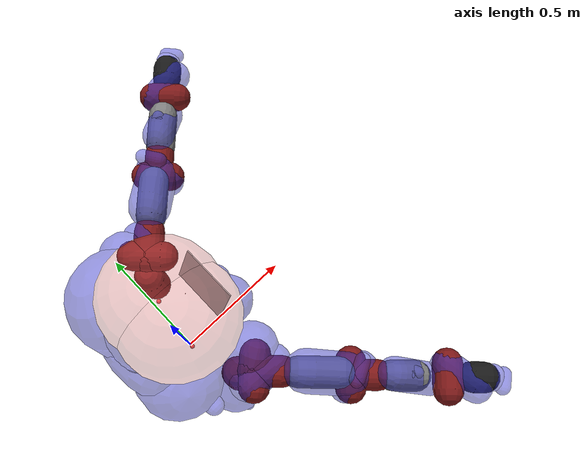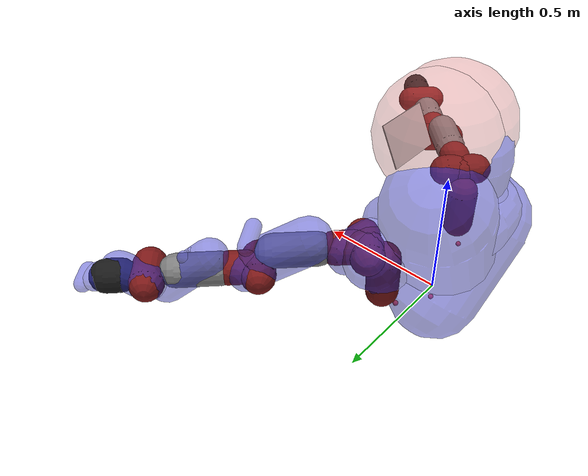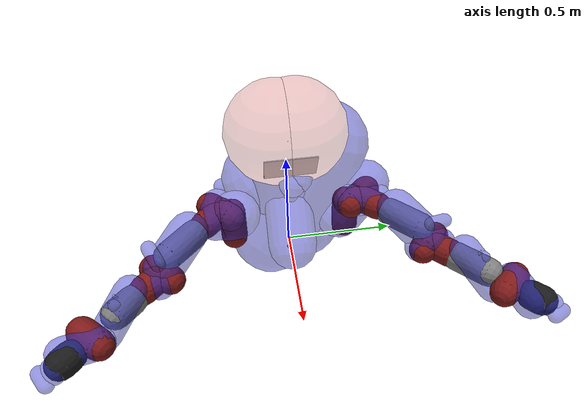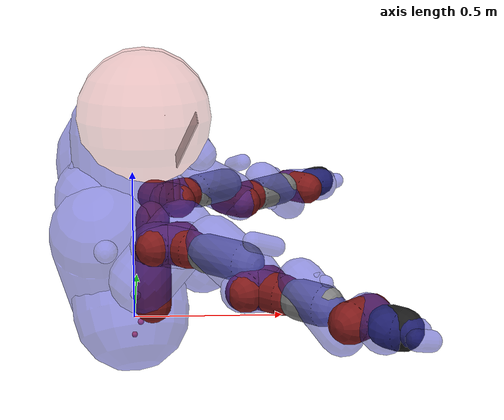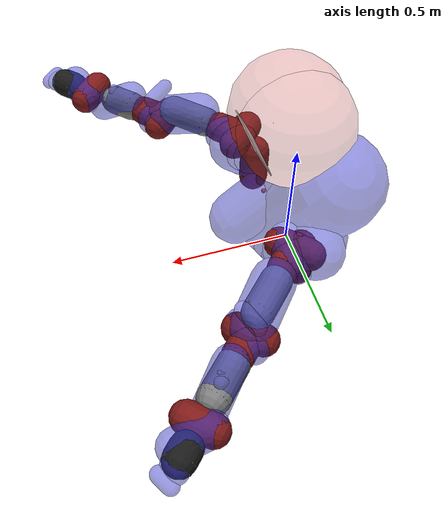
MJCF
<mujoco model="baxter">
  <compiler angle="radian"/>
  <asset>
    <material name="Material_001.001" specular="0.5" shininess="0.225" rgba="0.121856 0.121856 0.121856 1.000000"/>
    <mesh name="H0" file="obj_meshes/head/H0/H0.obj"/>
    <material name="Material.003" specular="0.5" shininess="0.225" rgba="0.640000 0.000000 0.000000 1.000000"/>
    <material name="Material_001.003" specular="0.5" shininess="0.225" rgba="0.000000 0.000000 0.000000 1.000000"/>
    <mesh name="H1_0" file="obj_meshes/head/H1/H1_0.obj"/>
    <mesh name="H1_1" file="obj_meshes/head/H1/H1_1.obj"/>
    <material name="Material_001.004" specular="0.5" shininess="0.225" rgba="0.512000 0.000000 0.000000 1.000000"/>
    <material name="Material_002" specular="0.5" shininess="0.225" rgba="0.016303 0.016303 0.016303 1.000000"/>
    <mesh name="E1_0" file="obj_meshes/lower_elbow/E1/E1_0.obj"/>
    <mesh name="E1_1" file="obj_meshes/lower_elbow/E1/E1_1.obj"/>
    <material name="Material_001.005" specular="0.5" shininess="0.225" rgba="0.097485 0.097485 0.097485 1.000000"/>
    <material name="Material_002.005" specular="0.5" shininess="0.225" rgba="0.016303 0.016303 0.016303 1.000000"/>
    <mesh name="W1_0" file="obj_meshes/lower_forearm/W1/W1_0.obj"/>
    <mesh name="W1_1" file="obj_meshes/lower_forearm/W1/W1_1.obj"/>
    <material name="Material_001.006" specular="0.5" shininess="0.225" rgba="0.640000 0.000000 0.000000 1.000000"/>
    <mesh name="S1" file="obj_meshes/lower_shoulder/S1/S1.obj"/>
    <material name="Material_001.010" specular="0.5" shininess="0.225" rgba="0.512000 0.000000 0.000000 1.000000"/>
    <material name="Material_003" specular="0.5" shininess="0.225" rgba="0.016303 0.016303 0.016303 1.000000"/>
    <material name="Material_004" specular="0.5" shininess="0.225" rgba="0.066807 0.066822 0.066822 1.000000"/>
    <material name="Material_005" specular="0.5" shininess="0.225" rgba="0.640000 0.640000 0.640000 1.000000"/>
    <material name="Material_006" specular="0.5" shininess="0.225" rgba="0.351258 0.351258 0.351258 1.000000"/>
    <material name="Material_007" specular="0.5" shininess="0.225" rgba="0.016303 0.016303 0.016303 1.000000"/>
    <mesh name="base_link_0" file="obj_meshes/torso/base_link/base_link_0.obj"/>
    <mesh name="base_link_1" file="obj_meshes/torso/base_link/base_link_1.obj"/>
    <mesh name="base_link_2" file="obj_meshes/torso/base_link/base_link_2.obj"/>
    <mesh name="base_link_3" file="obj_meshes/torso/base_link/base_link_3.obj"/>
    <mesh name="base_link_4" file="obj_meshes/torso/base_link/base_link_4.obj"/>
    <mesh name="base_link_5" file="obj_meshes/torso/base_link/base_link_5.obj"/>
    <material name="Material_001.008" specular="0.5" shininess="0.225" rgba="0.512000 0.013653 0.013653 1.000000"/>
    <material name="Material_002.002" specular="0.5" shininess="0.225" rgba="0.016303 0.016303 0.016303 1.000000"/>
    <mesh name="E0_0" file="obj_meshes/upper_elbow/E0/E0_0.obj"/>
    <mesh name="E0_1" file="obj_meshes/upper_elbow/E0/E0_1.obj"/>
    <material name="Material_001.009" specular="0.5" shininess="0.225" rgba="0.512000 0.000000 0.000000 1.000000"/>
    <material name="Material_002.003" specular="0.5" shininess="0.225" rgba="0.097485 0.097485 0.097485 1.000000"/>
    <material name="Material_003.001" specular="0.5" shininess="0.225" rgba="0.016303 0.016303 0.016303 1.000000"/>
    <material name="Material_005.001" specular="0.5" shininess="0.225" rgba="0.512000 0.512000 0.512000 1.000000"/>
    <mesh name="W0_0" file="obj_meshes/upper_forearm/W0/W0_0.obj"/>
    <mesh name="W0_1" file="obj_meshes/upper_forearm/W0/W0_1.obj"/>
    <mesh name="W0_2" file="obj_meshes/upper_forearm/W0/W0_2.obj"/>
    <mesh name="W0_3" file="obj_meshes/upper_forearm/W0/W0_3.obj"/>
    <material name="Material_002.004" specular="0.5" shininess="0.225" rgba="0.097485 0.097485 0.097485 1.000000"/>
    <material name="Material_003.002" specular="0.5" shininess="0.225" rgba="0.016303 0.016303 0.016303 1.000000"/>
    <mesh name="S0_0" file="obj_meshes/upper_shoulder/S0/S0_0.obj"/>
    <mesh name="S0_1" file="obj_meshes/upper_shoulder/S0/S0_1.obj"/>
    <material name="Material_001.011" specular="0.5" shininess="0.225" rgba="0.016303 0.016303 0.016303 1.000000"/>
    <material name="Material_002.006" specular="0.5" shininess="0.225" rgba="0.512000 0.512000 0.512000 1.000000"/>
    <material name="Material_003.004" specular="0.5" shininess="0.225" rgba="0.170722 0.170722 0.170722 1.000000"/>
    <mesh name="W2_0" file="obj_meshes/wrist/W2/W2_0.obj"/>
    <mesh name="W2_1" file="obj_meshes/wrist/W2/W2_1.obj"/>
    <mesh name="W2_2" file="obj_meshes/wrist/W2/W2_2.obj"/>
    <mesh name="base_link_collision" file="obj_meshes/torso/base_link_collision.stl"/>
  </asset>
  <default>
    <default class="viz">
      <geom contype="0" conaffinity="0" group="1" type="mesh"/>
    </default>
    <default class="right_col">
      <geom contype="4" conaffinity="3" group="0"/>
    </default>
    <default class="left_col">
      <geom contype="2" conaffinity="5" group="0"/>
    </default>
    <default class="visual">
      <geom contype="0" conaffinity="0" group="1" type="mesh"/>
    </default>
  </default>
  <contact>
    <exclude body1="right_upper_shoulder" body2="torso"/>
    <exclude body1="right_upper_shoulder" body2="right_upper_elbow"/>
    <exclude body1="right_lower_shoulder" body2="torso"/>
    <exclude body1="left_upper_shoulder" body2="torso"/>
    <exclude body1="left_upper_shoulder" body2="left_upper_elbow"/>
    <exclude body1="left_lower_shoulder" body2="torso"/>
    <exclude body1="collision_head_link_1" body2="torso"/>
    <exclude body1="collision_head_link_2" body2="torso"/>
  </contact>
  <worldbody>
    <body name="base" pos="0 0 -0.062">
      <camera mode="fixed" name="robotview" pos="1.3 0 0.4" quat="0.653 0.271 0.271 0.653"/>
      <inertial pos="0 0 0" mass="10" diaginertia="0.001 0.001 0.001"/>
      <body name="fixed_base_link" pos="0 0 0">
        <body name="collision_head_link_1" pos="0.11 0 0.75">
          <inertial pos="0 0 0" mass="0.0001" diaginertia="1e-008 1e-008 1e-008"/>
          <geom name="collision_head_link_1_vis" margin="0.001" type="sphere" class="viz" size="0.001" rgba="0.8 0.3 0.3 1" pos="0 0 0"/>
          <geom name="collision_head_link_1_col" margin="0.001" type="sphere" size="0.22" rgba="0.8 0.3 0.3 0.3" pos="-0.07 -0.04 0"/>
        </body>
        <body name="collision_head_link_2" pos="0.11 0 0.75">
          <inertial pos="0 0 0" mass="0.0001" diaginertia="1e-008 1e-008 1e-008"/>
          <geom name="collision_head_link_2_col0" margin="0.001" type="sphere" size="0.001" rgba="0.8 0.3 0.3 0.3" pos="0 0 0"/>
          <geom name="collision_head_link_2_col1" margin="0.001" type="sphere" size="0.22" rgba="0.8 0.3 0.3 0.3" pos="-0.07 0.04 0"/>
        </body>
        <body name="torso" pos="0 0 0">
          <site name="center" pos="0 0 0" size="0.01" rgba="1 0.3 0.3 1" group="2"/>
          <inertial pos="0 0 0" quat="0.997433 0.00167178 0.0715546 -0.00209003" mass="35.3365" diaginertia="1.87139 1.66268 0.779991"/>
          <geom material="Material_005" class="visual" type="capsule" pos="-0.081433 -0.072697 0.370204" quat="0.703378 -0.710809 -0.003268 0.000000" size="0.037167 0.221585" rgba="0.2 0.2 0.8 0.5"/>
          <geom material="Material_007" class="visual" type="capsule" pos="-0.073734 -0.018619 0.252505" quat="0.941846 0.327920 -0.073451 0.000000" size="0.173754 0.166093" rgba="0.2 0.2 0.8 0.5"/>
          <geom material="Material_003" class="visual" type="capsule" pos="-0.122693 0.003881 0.476637" quat="0.683989 -0.727697 -0.051143 0.000000" size="0.134827 0.042538" rgba="0.2 0.2 0.8 0.5"/>
          <geom material="Material_001.010" class="visual" type="capsule" pos="0.059557 -0.004590 0.399006" quat="0.906060 -0.005941 -0.423109 0.000000" size="0.107036 0.221642" rgba="0.2 0.2 0.8 0.5"/>
          <geom material="Material_004" class="visual" type="capsule" pos="-0.022650 0.002690 0.401554" quat="0.022547 0.304639 0.952201 0.000000" size="0.167006 0.304473" rgba="0.2 0.2 0.8 0.5"/>
          <geom material="Material_006" class="visual" type="capsule" pos="0.124245 0.001605 0.329986" quat="0.002038 0.945159 -0.326604 0.000000" size="0.033007 0.192243" rgba="0.2 0.2 0.8 0.5"/>
          <geom name="base_link_col" margin="0.001" type="capsule" pos="-0.039338 0.053706 0.339379" quat="0.260848 0.939671 0.221308 0.000000" size="0.192445 0.274065" rgba="0.2 0.2 0.8 0.5"/>
          <body name="head" pos="0.06 0 0.686">
            <inertial pos="0 0 0" quat="0.339345 0.850736 -0.347392 0.201027" mass="0.547767" diaginertia="0.00474065 0.00461087 0.00199949"/>
            <geom material="Material_001.001" class="visual" type="capsule" pos="0.002227 0.004292 -0.025866" quat="0.675501 0.473419 -0.565307 0.000000" size="0.050797 0.023587" rgba="0.2 0.2 0.8 0.5"/>
            <body name="screen" pos="0.1227 0 0" quat="0.453099 0.542864 0.542864 0.453099">
              <inertial pos="0 0 0" quat="0.995785 0.0113501 -0.000390852 0.0910132" mass="0.440171" diaginertia="0.0040484 0.00275826 0.00150834"/>
              <geom material="Material.003" pos="0.015809 -0.001940 -0.028398" euler="0 -1.57 0" class="visual" type="capsule" quat="0.950472 0.299285 -0.083853 0.000000" size="0.055117 0.099567" rgba="0.2 0.2 0.8 0.5"/>
              <geom material="Material_001.003" pos="0.031960 -0.008564 -0.030000" euler="0 -1.57 0" class="visual" type="capsule" quat="0.322874 -0.914192 0.244959 0.000000" size="0.066389 0.070852" rgba="0.2 0.2 0.8 0.5"/>
              <geom name="screen2_vis" margin="0.001" class="viz" type="box" size="0.109 0.08 0.002" rgba="0.9 0.9 0.9 1" pos="0 -0.016 0" quat="0.991445 0.130526 0 0"/>
            </body>
          </body>
          <body name="right_arm_mount" pos="0.024645 -0.219645 0.118588" quat="0.923879 0 0 -0.382684">
            <site name="right_center" pos="0 0 0" size="0.01" rgba="1 0.3 0.3 1" group="2"/>
            <inertial pos="0 0 0" mass="0.0001" diaginertia="1e-008 1e-008 1e-008"/>
            <body name="right_upper_shoulder" pos="0.055695 0 0.011038">
              <inertial pos="0.01783 0.00086 0.19127" quat="0.975667 0.0673303 -0.206117 0.0325173" mass="5.70044" diaginertia="0.0498344 0.0377511 0.0331351"/>
              <joint limited="true" damping="0" armature=".01" name="right_s0" type="hinge" pos="0 0 0" axis="0 0 1" range="-1.70168 1.70168"/>
              <geom material="Material_002.004" class="visual" type="capsule" pos="0.025206 0.019225 0.217329" quat="0.927902 -0.334079 0.165494 0.000000" size="0.106234 0.096864" rgba="0.2 0.2 0.8 0.5"/>
              <geom material="Material_003.002" class="visual" type="capsule" pos="0.044732 -0.021626 0.138155" quat="0.682584 0.730805 0.001800 0.000000" size="0.020558 0.093743" rgba="0.2 0.2 0.8 0.5"/>
              <geom margin="0.001" class="right_col" type="capsule" size="0.06 0.0761" rgba="0.5 0.1 0.1 1" pos="0 0 0.1361" name="right_s0_collision"/>
              <body name="right_lower_shoulder" pos="0.069 0 0.27035" quat="0.707107 -0.707107 0 0">
                <inertial pos="0.06845 0.00269 -0.00529" quat="0.447487 0.536948 0.56425 0.439391" mass="3.22698" diaginertia="0.0278991 0.0212327 0.0112937"/>
                <joint limited="true" damping="0" armature=".01" name="right_s1" type="hinge" pos="0 0 0" axis="0 0 1" range="-2.147 1.047"/>
                <geom material="Material_001.006" class="visual" type="capsule" pos="0.021512 0.000144 -0.003796" quat="0.907228 0.013720 0.420415 0.000000" size="0.073372 0.057213" rgba="0.2 0.2 0.8 0.5"/>
                <geom margin="0.001" class="right_col" type="capsule" size="0.06 0.06" rgba="0.5 0.1 0.1 1" pos="0 0 0" name="right_s1_collision"/>
                <body name="right_upper_elbow" pos="0.102 0 0" quat="0.5 0.5 0.5 0.5">
                  <inertial pos="-0.00276 0.00132 0.18086" quat="0.838995 -0.0423128 -0.121287 0.52876" mass="4.31272" diaginertia="0.0287695 0.0273625 0.011409"/>
                  <joint limited="true" damping="0" armature=".01" name="right_e0" type="hinge" pos="0 0 0" axis="0 0 1" range="-3.05418 3.05418"/>
                  <geom material="Material_001.008" class="visual" type="capsule" pos="0.003041 -0.000037 0.170490" quat="0.972836 0.001261 0.231494 0.000000" size="0.083589 0.091577" rgba="0.2 0.2 0.8 0.5"/>
                  <geom material="Material_002.002" class="visual" type="capsule" pos="-0.067811 0.003959 0.284474" quat="0.589711 0.762920 -0.264940 0.000000" size="0.029673 0.040524" rgba="0.2 0.2 0.8 0.5"/>
                  <geom margin="0.001" class="right_col" type="capsule" size="0.06 0.0535" rgba="0.5 0.1 0.1 1" pos="0 0 -0.0535" name="right_e0_collision"/>
                  <geom margin="0.001" class="right_col" name="right_upper_elbow_col" type="capsule" size="0.06 0.07650000000000001" pos="0 0 0.1365" rgba="0.499 0.499 0.499 1"/>
                  <body name="right_lower_elbow" pos="0.069 0 0.26242" quat="0.5 -0.5 -0.5 -0.5">
                    <inertial pos="0.02611 0.00159 -0.01117" quat="0.440433 0.577149 0.562777 0.395221" mass="2.07206" diaginertia="0.0132096 0.00950002 0.00685697"/>
                    <joint limited="true" damping="0" armature=".01" name="right_e1" type="hinge" pos="0 0 0" axis="0 0 1" range="-0.05 2.618"/>
                    <geom material="Material_001.004" class="visual" type="capsule" pos="0.010661 0.000370 -0.007615" quat="0.940242 0.005100 0.340470 0.000000" size="0.066741 0.044604" rgba="0.2 0.2 0.8 0.5"/>
                    <geom material="Material_002" class="visual" type="capsule" pos="-0.000197 -0.001061 -0.000021" quat="0.009940 -0.948260 0.317338 0.000000" size="0.056844 0.038511" rgba="0.2 0.2 0.8 0.5"/>
                    <geom margin="0.001" class="right_col" type="capsule" size="0.06 0.05" rgba="0.5 0.1 0.1 1" pos="0 0 0" name="right_e1_collision"/>
                    <body name="right_upper_forearm" pos="0.10359 0 0" quat="0.5 0.5 0.5 0.5">
                      <inertial pos="-0.00168 0.0046 0.13952" quat="0.892709 -0.0256256 0.00446984 0.449882" mass="2.24665" diaginertia="0.016916 0.0165511 0.00371123"/>
                      <joint limited="true" damping="0" armature=".01" name="right_w0" type="hinge" pos="0 0 0" axis="0 0 1" range="-3.059 3.059"/>
                      <geom material="Material_003.001" class="visual" type="capsule" pos="-0.052651 0.018926 0.102814" quat="0.191876 -0.750539 0.632357 0.000000" size="0.023936 0.041531" rgba="0.2 0.2 0.8 0.5"/>
                      <geom material="Material_001.009" class="visual" type="capsule" pos="0.004513 -0.001735 0.134913" quat="0.946283 0.017023 0.322891 0.000000" size="0.065568 0.098412" rgba="0.2 0.2 0.8 0.5"/>
                      <geom material="Material_002.003" class="visual" type="capsule" pos="-0.081990 -0.000054 0.115461" quat="0.806737 0.590908 -0.001854 0.000000" size="0.009725 0.008740" rgba="0.2 0.2 0.8 0.5"/>
                      <geom material="Material_005.001" class="visual" type="capsule" pos="-0.001281 -0.001343 0.113599" quat="0.687133 0.013582 0.726404 0.000000" size="0.034913 0.040140" rgba="0.2 0.2 0.8 0.5"/>
                      <geom margin="0.001" class="right_col" type="capsule" size="0.06 0.044" rgba="0.5 0.1 0.1 1" pos="0 0 -0.044" name="right_w0_collision"/>
                      <geom margin="0.001" class="right_col" name="right_upper_forearm_col" type="capsule" size="0.06 0.0436" pos="0 0 0.1" rgba="0.499 0.499 0.499 1"/>
                      <body name="right_lower_forearm" pos="0.01 0 0.2707" quat="0.5 -0.5 -0.5 -0.5">
                        <inertial pos="0.06041 0.00697 0.006" quat="0.456911 0.468526 0.475683 0.587743" mass="1.60979" diaginertia="0.00708828 0.00552689 0.00379383"/>
                        <joint limited="true" damping="0" armature=".01" name="right_w1" type="hinge" pos="0 0 0" axis="0 0 1" range="-1.5708 2.094"/>
                        <geom material="Material_001.005" class="visual" type="capsule" pos="0.050706 0.001646 0.002160" quat="0.468094 -0.017350 0.883508 0.000000" size="0.064285 0.066314" rgba="0.2 0.2 0.8 0.5"/>
                        <geom material="Material_002.005" class="visual" type="capsule" pos="-0.000008 -0.000023 -0.001511" quat="0.999999 -0.001350 0.000803 0.000000" size="0.046950 0.037234" rgba="0.2 0.2 0.8 0.5"/>
                        <geom margin="0.001" class="right_col" type="capsule" size="0.06 0.05" rgba="0.5 0.1 0.1 1" pos="0 0 0" name="right_w1_collision"/>
                        <body name="right_wrist" pos="0.115975 0 0" quat="0.5 0.5 0.5 0.5">
                          <inertial pos="0.00198 0.00125 0.01855" quat="0.0594843 0.68926 -0.16016 0.704082" mass="0.35093" diaginertia="0.0003082 0.000269928 0.000251035"/>
                          <joint limited="true" damping="0" armature=".01" name="right_w2" type="hinge" pos="0 0 0" axis="0 0 1" range="-3.059 3.059"/>
                          <geom material="Material_002.006" class="visual" type="capsule" pos="0.000025 -0.000243 0.055876" quat="0.816400 -0.567227 0.108368 0.000000" size="0.041827 0.011605" rgba="0.2 0.2 0.8 0.5"/>
                          <geom material="Material_001.011" class="visual" type="capsule" pos="0.010305 -0.010892 0.097777" quat="0.623828 0.757025 -0.194301 0.000000" size="0.030652 0.026136" rgba="0.2 0.2 0.8 0.5"/>
                          <geom material="Material_003.004" class="visual" type="capsule" pos="0.009759 -0.000603 0.095959" quat="0.707665 -0.687481 0.163033 0.000000" size="0.004224 0.035991" rgba="0.2 0.2 0.8 0.5"/>
                          <geom margin="0.001" class="right_col" type="capsule" size="0.06 0.022500000000000006" rgba="0.1 0.1 0.1 1" pos="0 0 0" name="right_w2_collision"/>
                          <body name="right_hand" pos="0 0 0.11355">
                            <camera mode="fixed" name="right_eye_in_hand" pos="0.05 0 0" quat="0 0.707108 0.707108 0" fovy="75"/>
                          </body>
                        </body>
                      </body>
                    </body>
                  </body>
                </body>
              </body>
            </body>
          </body>
          <body name="left_arm_mount" pos="0.024645 0.219645 0.118588" quat="0.923879 0 0 0.382684">
            <site name="left_center" pos="0 0 0" size="0.01" rgba="1 0.3 0.3 1" group="2"/>
            <inertial pos="0 0 0" mass="0.0001" diaginertia="1e-008 1e-008 1e-008"/>
            <body name="left_upper_shoulder" pos="0.055695 0 0.011038">
              <inertial pos="0.01783 0.00086 0.19127" quat="0.975667 0.0673303 -0.206117 0.0325173" mass="5.70044" diaginertia="0.0498344 0.0377511 0.0331351"/>
              <joint limited="true" damping="0" armature=".01" name="left_s0" type="hinge" pos="0 0 0" axis="0 0 1" range="-1.70168 1.70168"/>
              <geom material="Material_002.004" class="visual" type="capsule" pos="0.025206 0.019225 0.217329" quat="0.927902 -0.334079 0.165494 0.000000" size="0.106234 0.096864" rgba="0.2 0.2 0.8 0.5"/>
              <geom material="Material_003.002" class="visual" type="capsule" pos="0.044732 -0.021626 0.138155" quat="0.682584 0.730805 0.001800 0.000000" size="0.020558 0.093743" rgba="0.2 0.2 0.8 0.5"/>
              <geom margin="0.001" class="left_col" type="capsule" size="0.06 0.0761" rgba="0.5 0.1 0.1 1" pos="0 0 0.1361" name="left_s0_collision"/>
              <body name="left_lower_shoulder" pos="0.069 0 0.27035" quat="0.707107 -0.707107 0 0">
                <inertial pos="0.06845 0.00269 -0.00529" quat="0.447487 0.536948 0.56425 0.439391" mass="3.22698" diaginertia="0.0278991 0.0212327 0.0112937"/>
                <joint limited="true" damping="0" armature=".01" name="left_s1" type="hinge" pos="0 0 0" axis="0 0 1" range="-2.147 1.047"/>
                <geom material="Material_001.006" class="visual" type="capsule" pos="0.021512 0.000144 -0.003796" quat="0.907228 0.013720 0.420415 0.000000" size="0.073372 0.057213" rgba="0.2 0.2 0.8 0.5"/>
                <geom margin="0.001" class="left_col" type="capsule" size="0.06 0.06" rgba="0.5 0.1 0.1 1" pos="0 0 0" name="left_s1_collision"/>
                <body name="left_upper_elbow" pos="0.102 0 0" quat="0.5 0.5 0.5 0.5">
                  <inertial pos="-0.00276 0.00132 0.18086" quat="0.838995 -0.0423128 -0.121287 0.52876" mass="4.31272" diaginertia="0.0287695 0.0273625 0.011409"/>
                  <joint limited="true" damping="0" armature=".01" name="left_e0" type="hinge" pos="0 0 0" axis="0 0 1" range="-3.05418 3.05418"/>
                  <geom material="Material_001.008" class="visual" type="capsule" pos="0.003041 -0.000037 0.170490" quat="0.972836 0.001261 0.231494 0.000000" size="0.083589 0.091577" rgba="0.2 0.2 0.8 0.5"/>
                  <geom material="Material_002.002" class="visual" type="capsule" pos="-0.067811 0.003959 0.284474" quat="0.589711 0.762920 -0.264940 0.000000" size="0.029673 0.040524" rgba="0.2 0.2 0.8 0.5"/>
                  <geom margin="0.001" class="left_col" type="capsule" size="0.06 0.0535" rgba="0.5 0.1 0.1 1" pos="0 0 -0.0535" name="left_e0_collision"/>
                  <geom margin="0.001" class="left_col" name="left_upper_elbow_col" type="capsule" size="0.06 0.07650000000000001" pos="0 0 0.1365" rgba="0.499 0.499 0.499 1"/>
                  <body name="left_lower_elbow" pos="0.069 0 0.26242" quat="0.5 -0.5 -0.5 -0.5">
                    <inertial pos="0.02611 0.00159 -0.01117" quat="0.440433 0.577149 0.562777 0.395221" mass="2.07206" diaginertia="0.0132096 0.00950002 0.00685697"/>
                    <joint limited="true" damping="0" armature=".01" name="left_e1" type="hinge" pos="0 0 0" axis="0 0 1" range="-0.05 2.618"/>
                    <geom material="Material_001.004" class="visual" type="capsule" pos="0.010661 0.000370 -0.007615" quat="0.940242 0.005100 0.340470 0.000000" size="0.066741 0.044604" rgba="0.2 0.2 0.8 0.5"/>
                    <geom material="Material_002" class="visual" type="capsule" pos="-0.000197 -0.001061 -0.000021" quat="0.009940 -0.948260 0.317338 0.000000" size="0.056844 0.038511" rgba="0.2 0.2 0.8 0.5"/>
                    <geom margin="0.001" class="left_col" type="capsule" size="0.06 0.05" rgba="0.5 0.1 0.1 1" pos="0 0 0" name="left_e1_collision"/>
                    <body name="left_upper_forearm" pos="0.10359 0 0" quat="0.5 0.5 0.5 0.5">
                      <inertial pos="-0.00168 0.0046 0.13952" quat="0.892709 -0.0256256 0.00446984 0.449882" mass="2.24665" diaginertia="0.016916 0.0165511 0.00371123"/>
                      <joint limited="true" damping="0" armature=".01" name="left_w0" type="hinge" pos="0 0 0" axis="0 0 1" range="-3.059 3.059"/>
                      <geom material="Material_003.001" class="visual" type="capsule" pos="-0.052651 0.018926 0.102814" quat="0.191876 -0.750539 0.632357 0.000000" size="0.023936 0.041531" rgba="0.2 0.2 0.8 0.5"/>
                      <geom material="Material_001.009" class="visual" type="capsule" pos="0.004513 -0.001735 0.134913" quat="0.946283 0.017023 0.322891 0.000000" size="0.065568 0.098412" rgba="0.2 0.2 0.8 0.5"/>
                      <geom material="Material_002.003" class="visual" type="capsule" pos="-0.081990 -0.000054 0.115461" quat="0.806737 0.590908 -0.001854 0.000000" size="0.009725 0.008740" rgba="0.2 0.2 0.8 0.5"/>
                      <geom material="Material_005.001" class="visual" type="capsule" pos="-0.001281 -0.001343 0.113599" quat="0.687133 0.013582 0.726404 0.000000" size="0.034913 0.040140" rgba="0.2 0.2 0.8 0.5"/>
                      <geom margin="0.001" class="left_col" type="capsule" size="0.06 0.044" rgba="0.5 0.1 0.1 1" pos="0 0 -0.044" name="left_w0_collision"/>
                      <geom margin="0.001" class="left_col" name="left_upper_forearm_col" type="capsule" size="0.06 0.07600000000000001" pos="0 0 0.1" rgba="0.499 0.499 0.499 1"/>
                      <body name="left_lower_forearm" pos="0.01 0 0.2707" quat="0.5 -0.5 -0.5 -0.5">
                        <inertial pos="0.06041 0.00697 0.006" quat="0.456911 0.468526 0.475683 0.587743" mass="1.60979" diaginertia="0.00708828 0.00552689 0.00379383"/>
                        <joint limited="true" damping="0" armature=".01" name="left_w1" type="hinge" pos="0 0 0" axis="0 0 1" range="-1.5708 2.094"/>
                        <geom material="Material_001.005" class="visual" type="capsule" pos="0.050706 0.001646 0.002160" quat="0.468094 -0.017350 0.883508 0.000000" size="0.064285 0.066314" rgba="0.2 0.2 0.8 0.5"/>
                        <geom material="Material_002.005" class="visual" type="capsule" pos="-0.000008 -0.000023 -0.001511" quat="0.999999 -0.001350 0.000803 0.000000" size="0.046950 0.037234" rgba="0.2 0.2 0.8 0.5"/>
                        <geom margin="0.001" class="left_col" type="capsule" size="0.06 0.05" rgba="0.5 0.1 0.1 1" pos="0 0 0" name="left_w1_collision"/>
                        <body name="left_wrist" pos="0.115975 0 0" quat="0.5 0.5 0.5 0.5">
                          <inertial pos="0.00198 0.00125 0.01855" quat="0.0594843 0.68926 -0.16016 0.704082" mass="0.35093" diaginertia="0.0003082 0.000269928 0.000251035"/>
                          <joint limited="true" damping="0" armature=".01" name="left_w2" type="hinge" pos="0 0 0" axis="0 0 1" range="-3.059 3.059"/>
                          <geom material="Material_002.006" class="visual" type="capsule" pos="0.000025 -0.000243 0.055876" quat="0.816400 -0.567227 0.108368 0.000000" size="0.041827 0.011605" rgba="0.2 0.2 0.8 0.5"/>
                          <geom material="Material_001.011" class="visual" type="capsule" pos="0.010305 -0.010892 0.097777" quat="0.623828 0.757025 -0.194301 0.000000" size="0.030652 0.026136" rgba="0.2 0.2 0.8 0.5"/>
                          <geom material="Material_003.004" class="visual" type="capsule" pos="0.009759 -0.000603 0.095959" quat="0.707665 -0.687481 0.163033 0.000000" size="0.004224 0.035991" rgba="0.2 0.2 0.8 0.5"/>
                          <geom margin="0.001" class="left_col" type="capsule" size="0.06 0.022500000000000006" rgba="0.1 0.1 0.1 1" pos="0 0 0" name="left_w2_collision"/>
                          <body name="left_hand" pos="0 0 0.11355">
                            <camera mode="fixed" name="left_eye_in_hand" pos="0.05 0 0" quat="0 0.707108 0.707108 0" fovy="75"/>
                          </body>
                        </body>
                      </body>
                    </body>
                  </body>
                </body>
              </body>
            </body>
          </body>
        </body>
      </body>
    </body>
  </worldbody>
  <actuator>
    <motor ctrllimited="true" ctrlrange="-50 50" joint="right_s0" name="torq_right_j0"/>
    <motor ctrllimited="true" ctrlrange="-100 100" joint="right_s1" name="torq_right_j1"/>
    <motor ctrllimited="true" ctrlrange="-50 50" joint="right_e0" name="torq_right_j2"/>
    <motor ctrllimited="true" ctrlrange="-50 50" joint="right_e1" name="torq_right_j3"/>
    <motor ctrllimited="true" ctrlrange="-15 15" joint="right_w0" name="torq_right_j4"/>
    <motor ctrllimited="true" ctrlrange="-15 15" joint="right_w1" name="torq_right_j5"/>
    <motor ctrllimited="true" ctrlrange="-15 15" joint="right_w2" name="torq_right_j6"/>
    <motor ctrllimited="true" ctrlrange="-50 50" joint="left_s0" name="torq_left_j0"/>
    <motor ctrllimited="true" ctrlrange="-100 100" joint="left_s1" name="torq_left_j1"/>
    <motor ctrllimited="true" ctrlrange="-50 50" joint="left_e0" name="torq_left_j2"/>
    <motor ctrllimited="true" ctrlrange="-50 50" joint="left_e1" name="torq_left_j3"/>
    <motor ctrllimited="true" ctrlrange="-15 15" joint="left_w0" name="torq_left_j4"/>
    <motor ctrllimited="true" ctrlrange="-15 15" joint="left_w1" name="torq_left_j5"/>
    <motor ctrllimited="true" ctrlrange="-15 15" joint="left_w2" name="torq_left_j6"/>
  </actuator>
</mujoco>
